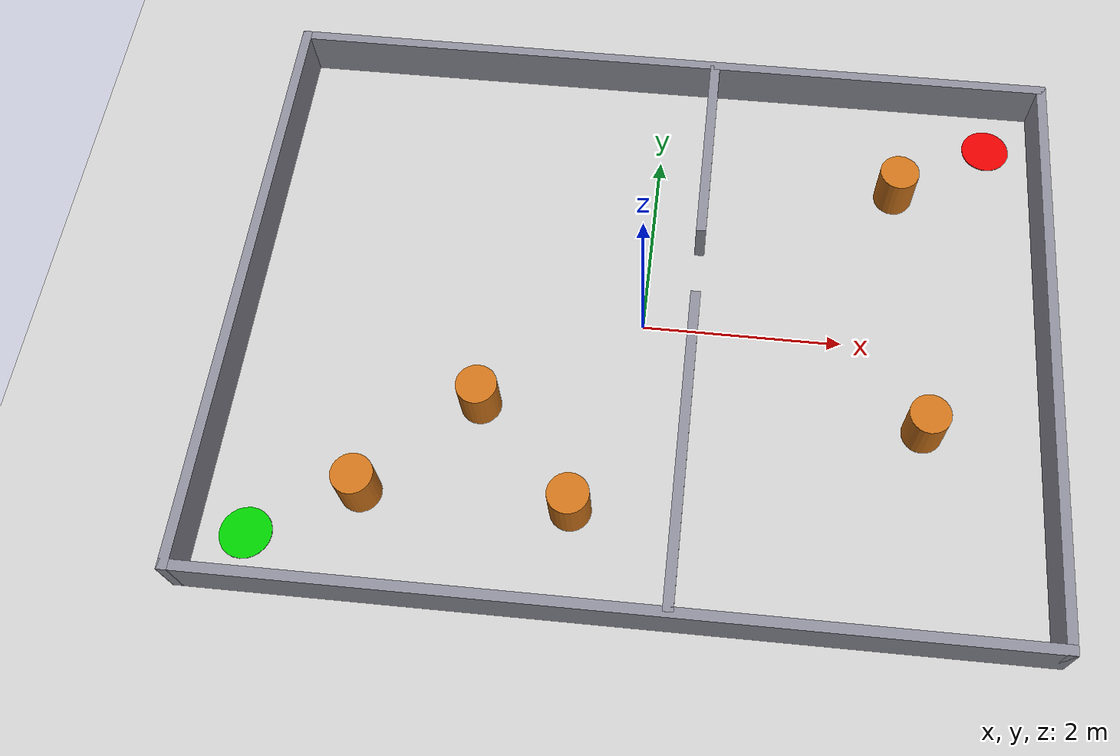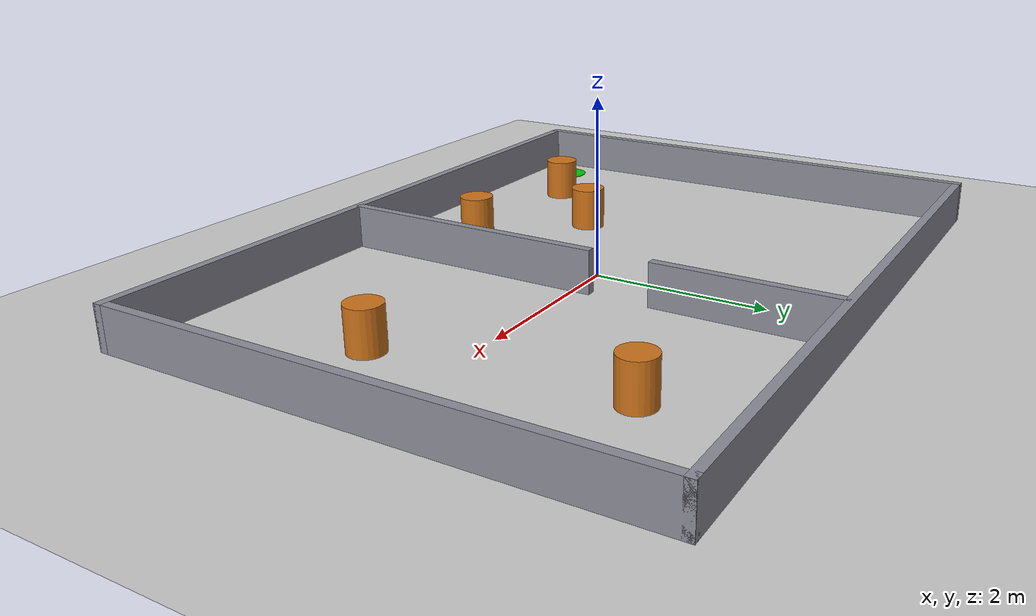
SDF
<?xml version="1.0"?>
<sdf version="1.6">
  <world name="obstacle_course">

    <include>
      <uri>model://ground_plane</uri>
    </include>

    <include>
      <uri>model://sun</uri>
    </include>

    <!-- obstacle course: start (-3.5,-2.5), goal (3.5,2.5) -->
    <model name="wall_north">
      <static>true</static>
      <pose>0 3 0.25 0 0 0</pose>
      <link name="link">
        <collision name="c"><geometry><box><size>8.1 0.1 0.5</size></box></geometry></collision>
        <visual name="v"><geometry><box><size>8.1 0.1 0.5</size></box></geometry>
          <material><ambient>0.55 0.55 0.6 1</ambient><diffuse>0.55 0.55 0.6 1</diffuse></material></visual>
      </link>
    </model>
    <model name="wall_south">
      <static>true</static>
      <pose>0 -3 0.25 0 0 0</pose>
      <link name="link">
        <collision name="c"><geometry><box><size>8.1 0.1 0.5</size></box></geometry></collision>
        <visual name="v"><geometry><box><size>8.1 0.1 0.5</size></box></geometry>
          <material><ambient>0.55 0.55 0.6 1</ambient><diffuse>0.55 0.55 0.6 1</diffuse></material></visual>
      </link>
    </model>
    <model name="wall_east">
      <static>true</static>
      <pose>4 0 0.25 0 0 0</pose>
      <link name="link">
        <collision name="c"><geometry><box><size>0.1 6.1 0.5</size></box></geometry></collision>
        <visual name="v"><geometry><box><size>0.1 6.1 0.5</size></box></geometry>
          <material><ambient>0.55 0.55 0.6 1</ambient><diffuse>0.55 0.55 0.6 1</diffuse></material></visual>
      </link>
    </model>
    <model name="wall_west">
      <static>true</static>
      <pose>-4 0 0.25 0 0 0</pose>
      <link name="link">
        <collision name="c"><geometry><box><size>0.1 6.1 0.5</size></box></geometry></collision>
        <visual name="v"><geometry><box><size>0.1 6.1 0.5</size></box></geometry>
          <material><ambient>0.55 0.55 0.6 1</ambient><diffuse>0.55 0.55 0.6 1</diffuse></material></visual>
      </link>
    </model>
    <model name="divider_lower">
      <static>true</static>
      <pose>0.5 -1.4 0.25 0 0 0</pose>
      <link name="link">
        <collision name="c"><geometry><box><size>0.1 3.2 0.5</size></box></geometry></collision>
        <visual name="v"><geometry><box><size>0.1 3.2 0.5</size></box></geometry>
          <material><ambient>0.55 0.55 0.6 1</ambient><diffuse>0.55 0.55 0.6 1</diffuse></material></visual>
      </link>
    </model>
    <model name="divider_upper">
      <static>true</static>
      <pose>0.5 1.95 0.25 0 0 0</pose>
      <link name="link">
        <collision name="c"><geometry><box><size>0.1 2.1 0.5</size></box></geometry></collision>
        <visual name="v"><geometry><box><size>0.1 2.1 0.5</size></box></geometry>
          <material><ambient>0.55 0.55 0.6 1</ambient><diffuse>0.55 0.55 0.6 1</diffuse></material></visual>
      </link>
    </model>
    <model name="pillar_0">
      <static>true</static>
      <pose>-2.5 -2.0 0.25 0 0 0</pose>
      <link name="link">
        <collision name="c"><geometry><cylinder><radius>0.2</radius><length>0.5</length></cylinder></geometry></collision>
        <visual name="v"><geometry><cylinder><radius>0.2</radius><length>0.5</length></cylinder></geometry>
          <material><ambient>0.8 0.45 0.1 1</ambient><diffuse>0.8 0.45 0.1 1</diffuse></material></visual>
      </link>
    </model>
    <model name="pillar_1">
      <static>true</static>
      <pose>-1.5 -1.0 0.25 0 0 0</pose>
      <link name="link">
        <collision name="c"><geometry><cylinder><radius>0.2</radius><length>0.5</length></cylinder></geometry></collision>
        <visual name="v"><geometry><cylinder><radius>0.2</radius><length>0.5</length></cylinder></geometry>
          <material><ambient>0.8 0.45 0.1 1</ambient><diffuse>0.8 0.45 0.1 1</diffuse></material></visual>
      </link>
    </model>
    <model name="pillar_2">
      <static>true</static>
      <pose>-0.5 -2.0 0.25 0 0 0</pose>
      <link name="link">
        <collision name="c"><geometry><cylinder><radius>0.2</radius><length>0.5</length></cylinder></geometry></collision>
        <visual name="v"><geometry><cylinder><radius>0.2</radius><length>0.5</length></cylinder></geometry>
          <material><ambient>0.8 0.45 0.1 1</ambient><diffuse>0.8 0.45 0.1 1</diffuse></material></visual>
      </link>
    </model>
    <model name="pillar_3">
      <static>true</static>
      <pose>2.5 1.8 0.25 0 0 0</pose>
      <link name="link">
        <collision name="c"><geometry><cylinder><radius>0.2</radius><length>0.5</length></cylinder></geometry></collision>
        <visual name="v"><geometry><cylinder><radius>0.2</radius><length>0.5</length></cylinder></geometry>
          <material><ambient>0.8 0.45 0.1 1</ambient><diffuse>0.8 0.45 0.1 1</diffuse></material></visual>
      </link>
    </model>
    <model name="pillar_4">
      <static>true</static>
      <pose>2.8 -0.9 0.25 0 0 0</pose>
      <link name="link">
        <collision name="c"><geometry><cylinder><radius>0.2</radius><length>0.5</length></cylinder></geometry></collision>
        <visual name="v"><geometry><cylinder><radius>0.2</radius><length>0.5</length></cylinder></geometry>
          <material><ambient>0.8 0.45 0.1 1</ambient><diffuse>0.8 0.45 0.1 1</diffuse></material></visual>
      </link>
    </model>
    <model name="start_marker">
      <static>true</static>
      <pose>-3.5 -2.5 0.005 0 0 0</pose>
      <link name="link">
        <visual name="v"><geometry><cylinder><radius>0.25</radius><length>0.01</length></cylinder></geometry>
          <material><ambient>0 0.8 0 1</ambient><diffuse>0 0.8 0 1</diffuse></material></visual>
      </link>
    </model>
    <model name="goal_marker">
      <static>true</static>
      <pose>3.5 2.5 0.005 0 0 0</pose>
      <link name="link">
        <visual name="v"><geometry><cylinder><radius>0.25</radius><length>0.01</length></cylinder></geometry>
          <material><ambient>0.9 0 0 1</ambient><diffuse>0.9 0 0 1</diffuse></material></visual>
      </link>
    </model>

    <scene>
      <shadows>false</shadows>
    </scene>

    <gui fullscreen='0'>
      <camera name='user_camera'>
        <pose frame=''>0 0 11 0 1.5708 0</pose>
        <view_controller>orbit</view_controller>
        <projection_type>perspective</projection_type>
      </camera>
    </gui>

    <physics type="ode">
      <real_time_update_rate>1000.0</real_time_update_rate>
      <max_step_size>0.001</max_step_size>
      <real_time_factor>1</real_time_factor>
      <ode>
        <solver>
          <type>quick</type>
          <iters>150</iters>
          <precon_iters>0</precon_iters>
          <sor>1.400000</sor>
          <use_dynamic_moi_rescaling>1</use_dynamic_moi_rescaling>
        </solver>
        <constraints>
          <cfm>0.00001</cfm>
          <erp>0.2</erp>
          <contact_max_correcting_vel>2000.000000</contact_max_correcting_vel>
          <contact_surface_layer>0.01000</contact_surface_layer>
        </constraints>
      </ode>
    </physics>

  </world>
</sdf>
